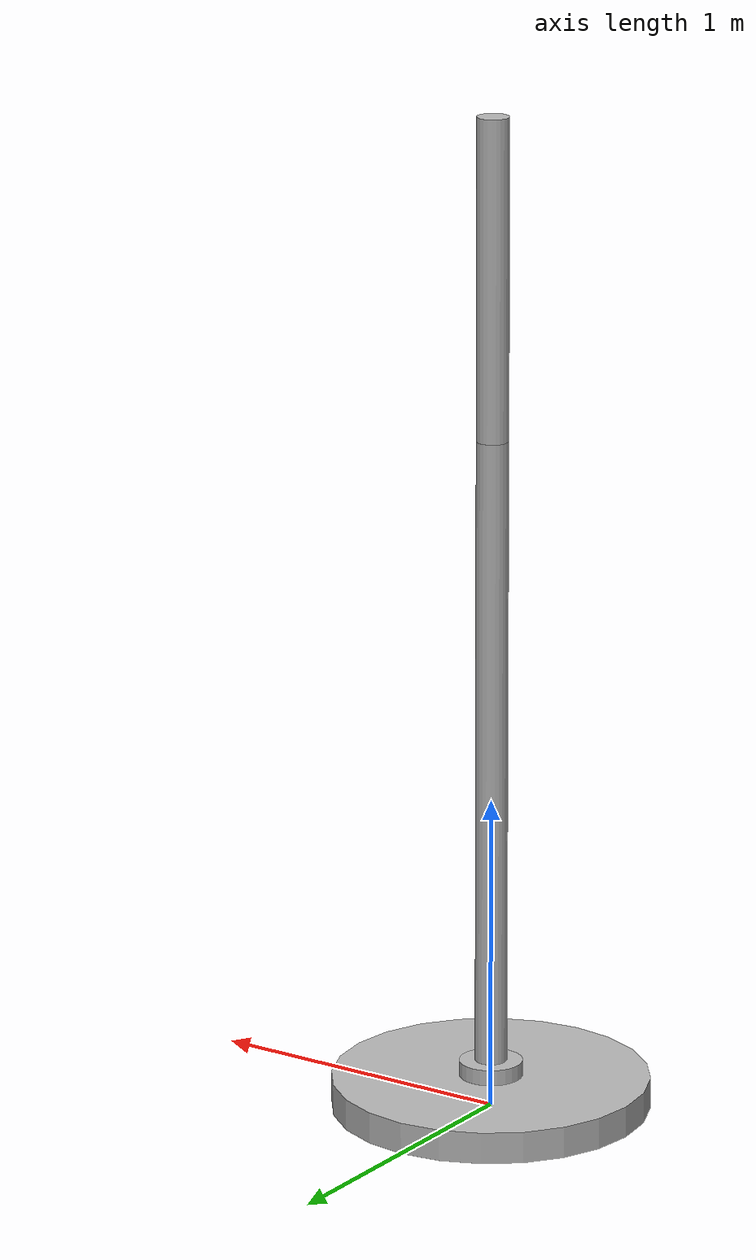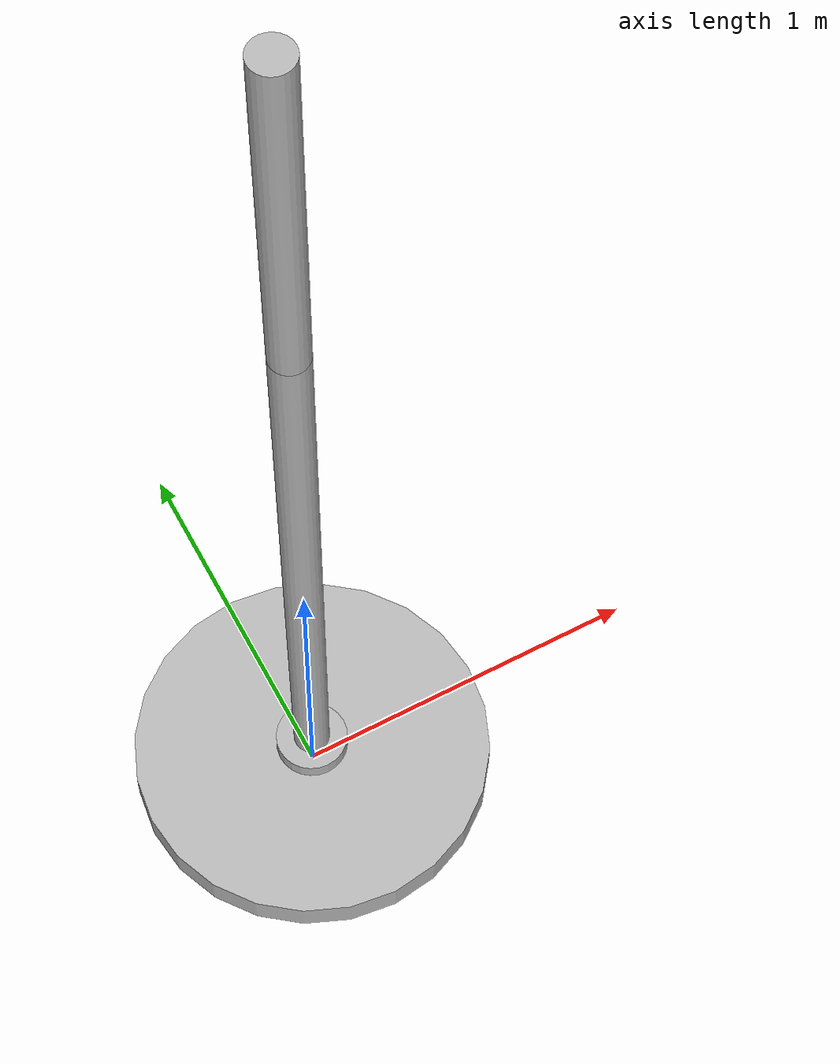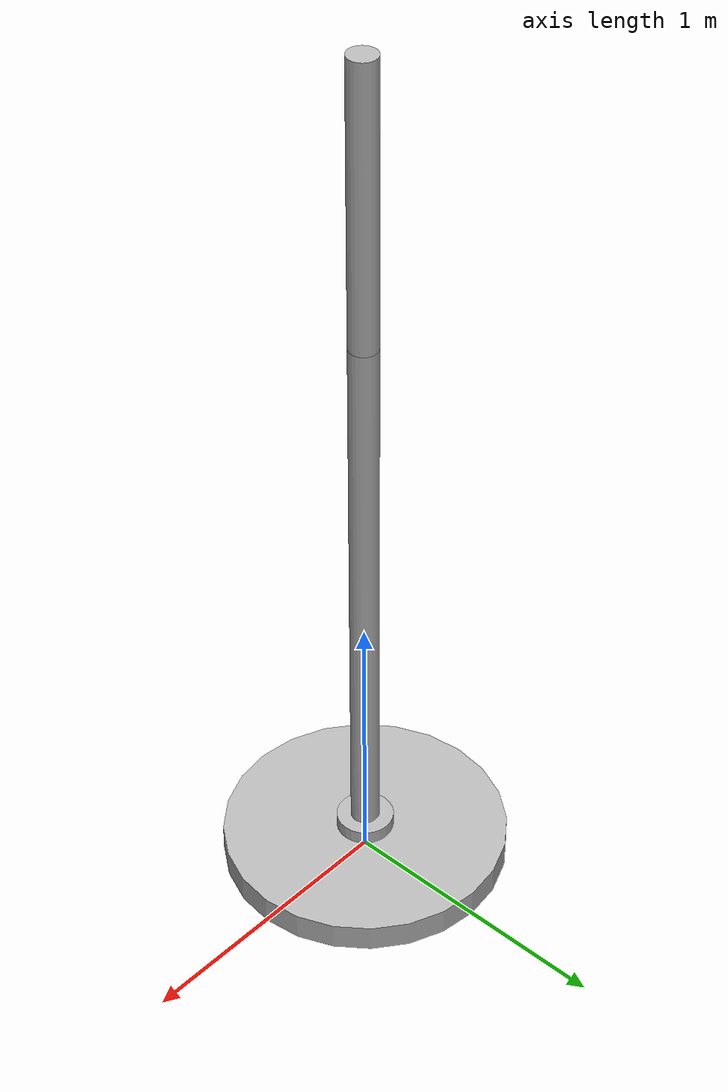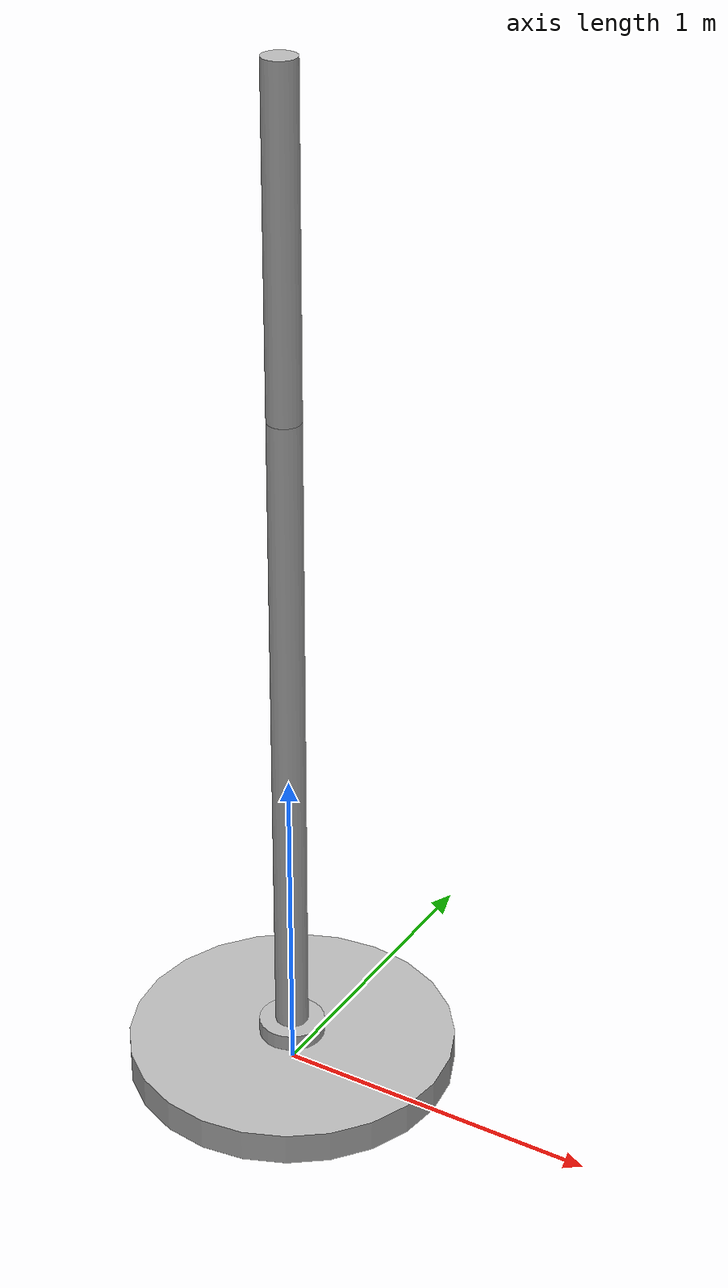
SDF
<?xml version='1.0'?>
<sdf version='1.4'>
    <model name="my_robot">
        <static>false</static>
        <self_collide>1</self_collide>
        <link name='chassis'>
            <pose>0 0 .05 0 0 0</pose>

            <collision name='collision'>
                <geometry>
                    <cylinder>
                        <radius>.5</radius>
                        <length>.1</length>
                    </cylinder>
                </geometry>
            </collision>

            <visual name='visual'>
                <geometry>
                    <cylinder>
                        <radius>.5</radius>
                        <length>.1</length>
                    </cylinder>
                </geometry>
            </visual>
        </link>
        <link name='arm1'>
            <pose>0 0 .125 0 0 0</pose>

            <collision name='collision'>
                <geometry>
                    <cylinder>
                        <radius>.1</radius>
                        <length>.05</length>
                    </cylinder>
                </geometry>
            </collision>

            <visual name='visual'>
                <geometry>
                    <cylinder>
                        <radius>.1</radius>
                        <length>.05</length>
                    </cylinder>
                </geometry>
            </visual>
        </link>
        <link name='arm2'>
            <pose>0 0 1.15 0 0 0</pose>

            <collision name='collision'>
                <geometry>
                    <cylinder>
                        <radius>.05</radius>
                        <length>2.0</length>
                    </cylinder>
                </geometry>
            </collision>

            <visual name='visual'>
                <geometry>
                    <cylinder>
                        <radius>.05</radius>
                        <length>2.0</length>
                    </cylinder>
                </geometry>
            </visual>
        </link>
        <link name='arm3'>
            <pose>0 0 2.65 0 0 0</pose>

            <collision name='collision'>
                <geometry>
                    <cylinder>
                        <radius>.05</radius>
                        <length>1.0</length>
                    </cylinder>
                </geometry>
            </collision>

            <visual name='visual'>
                <geometry>
                    <cylinder>
                        <radius>.05</radius>
                        <length>1.0</length>
                    </cylinder>
                </geometry>
            </visual>
        </link>
        <joint type="revolute" name="chasis_arm1_joint">
            <pose>0 0 -0.025 0 0 0</pose>
            <child>arm1</child>
            <parent>chassis</parent>
            <axis>
                <xyz>0 0 1</xyz>
            </axis>
        </joint>
         <joint type="revolute" name="arm1_arm2_joint">
            <pose>0 0 -1 0 0 0</pose>
            <child>arm2</child>
            <parent>arm1</parent>
            <axis>
                <xyz>1 0 0</xyz>
            </axis>
        </joint>
        <joint type="revolute" name="arm2_arm3_joint">
            <pose>0 0 -0.5 0 0 0</pose>
            <child>arm3</child>
            <parent>arm2</parent>
            <axis>
                <xyz>1 0 0</xyz>
            </axis>
        </joint>
        <plugin name="arm_control" filename="libcontroller.so" />

    </model>
</sdf>
